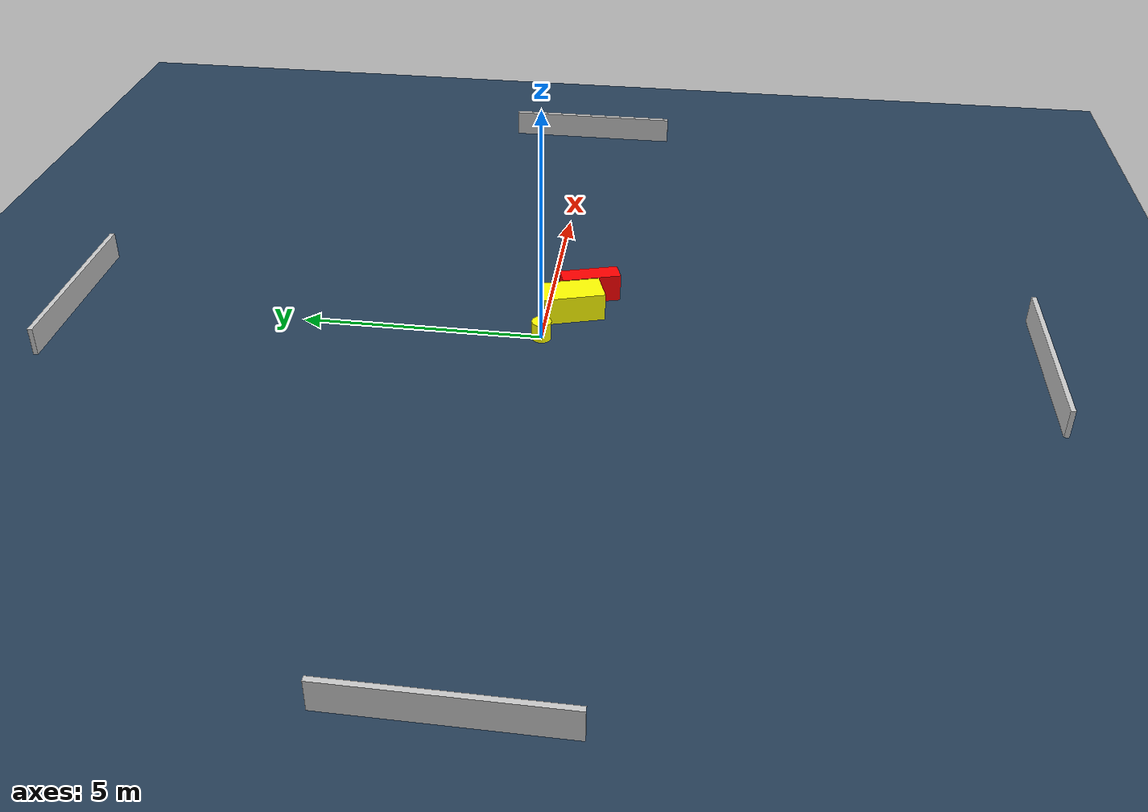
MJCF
<?xml version="1.0" ?>
<mujoco model="generated_environment">
  <option timestep="0.01" integrator="RK4" cone="elliptic"/>
  <default>
    <geom density="1"/>
  </default>
  <asset>
    <texture builtin="gradient" height="3072" name="skybox" rgb1="0.3 0.5 0.7" rgb2="0 0 0" type="skybox" width="512"/>
    <texture builtin="checker" height="300" name="groundplane" rgb1="0.2 0.3 0.4" rgb2="0.1 0.2 0.3" type="2d" width="300"/>
    <material name="groundplane" reflectance="0.2" texrepeat="5 5" texture="groundplane"/>
  </asset>
  <worldbody>
    <light dir="0 0 -1" directional="true" pos="0 0 1.5"/>
    <geom condim="3" friction="0.5 0.005 0.001" material="groundplane" name="floor" pos="0 0 0" size="0 0 0.05" type="plane"/>
    <body name="walls">
      <geom name="wall_1" condim="4" pos="-10.0 0.0 0.3" rgba="0.800000011920929 0.800000011920929 0.800000011920929 1.0" size="0.05 2.0 0.3" type="box"/>
      <geom name="wall_2" condim="4" pos="10.0 0.0 0.3" rgba="0.800000011920929 0.800000011920929 0.800000011920929 1.0" size="0.05 2.0 0.3" type="box"/>
      <geom name="wall_3" condim="4" pos="0.0 -10.0 0.3" rgba="0.800000011920929 0.800000011920929 0.800000011920929 1.0" size="2.0 0.05 0.3" type="box"/>
      <geom name="wall_4" condim="4" pos="0.0 10.0 0.3" rgba="0.800000011920929 0.800000011920929 0.800000011920929 1.0" size="2.0 0.05 0.3" type="box"/>
    </body>
    <body name="robot">
      <joint name="joint_x" type="slide" pos="0 0 0" axis="1 0 0"/>
      <joint name="joint_y" type="slide" pos="0 0 0" axis="0 1 0"/>
      <geom name="robot" type="cylinder" pos="0.0 0.0 0.2" size="0.2 0.2 0.0" mass="5.0" friction="1.0 0.005 0.0001" condim="4" rgba="1.0 1.0 0.0 1.0"/>
    </body>
    <body name="obstacle_1_movable">
      <geom name="obstacle_1_movable" condim="4" pos="1.0123226831653829 -0.4999168803586724 0.3" euler="0 0 197.38590248496354" friction="0.0 0.005 0.001" rgba="1.0 1.0 0.0 1.0" size="0.3465460367962734 0.6464300118881703 0.3" type="box" mass="0.1"/>
      <joint type="free"/>
    </body>
    <body name="obstacle_2_static">
      <geom name="obstacle_2_static" condim="4" pos="1.7113555499778519 -0.8099630936765274 0.3" euler="0 0 197.10084459589913" friction="0.0 0.005 0.001" rgba="1.0 0.0 0.0 1.0" size="0.20180742063637072 0.6257416798499165 0.3" type="box"/>
    </body>
  </worldbody>
  <actuator>
    <motor name="actuator_x" joint="joint_x" gear="1" ctrlrange="-1 1"/>
    <motor name="actuator_y" joint="joint_y" gear="1" ctrlrange="-1 1"/>
  </actuator>
</mujoco>
